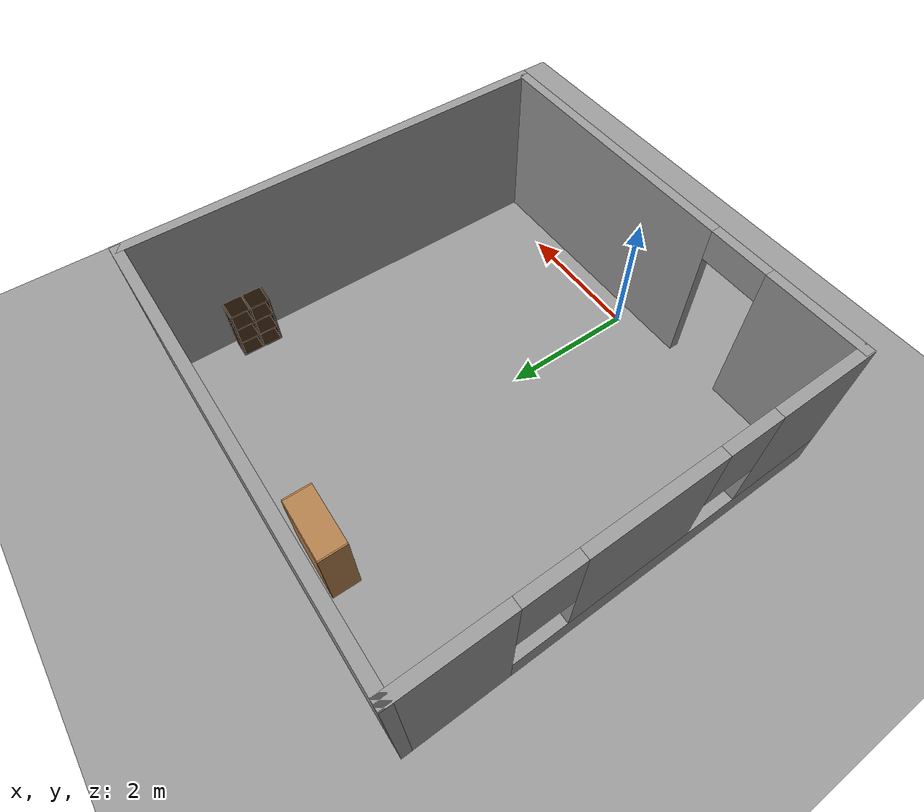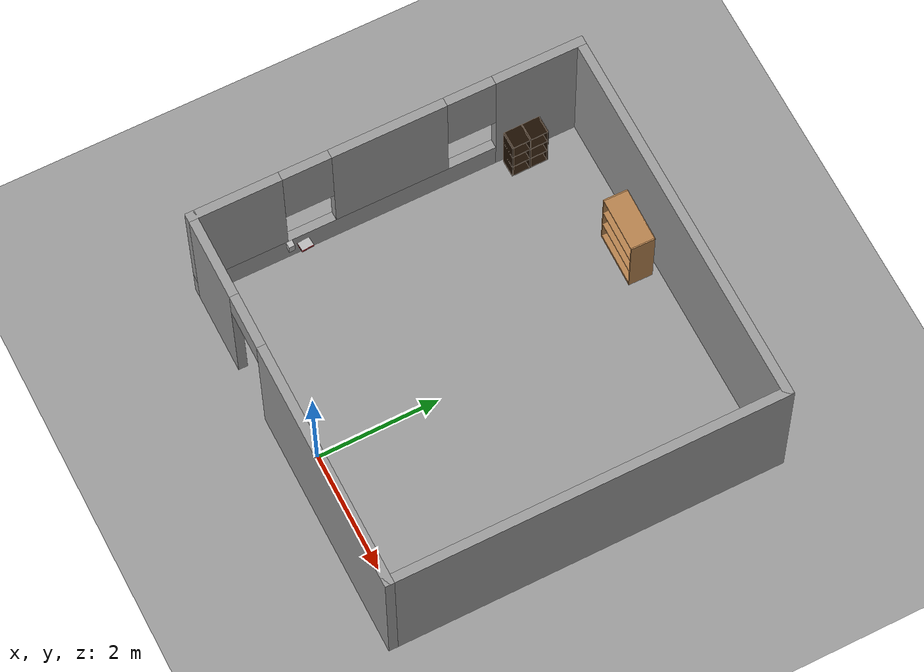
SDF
<sdf version="1.6">
 <world name="default">
  <light name="sun" type="directional">
   <pose>0 0 10 0 -0 0</pose>
   <diffuse>0.8 0.8 0.8 1</diffuse>
   <specular>0.2 0.2 0.2 1</specular>
   <attenuation>
    <range>1000</range>
    <constant>0.9</constant>
    <linear>0.01</linear>
    <quadratic>0.001</quadratic>
   </attenuation>
   <direction>0.5 0.1 -0.9</direction>
  </light>
  <scene><ambient>0.4 0.4 0.4 1</ambient><background>0.7 0.7 0.7 1</background><shadows>1</shadows></scene>
  <physics name="default_physics" default="0" type="ode">
   <max_step_size>0.01</max_step_size>
   <real_time_factor>1</real_time_factor>
   <real_time_update_rate>100</real_time_update_rate>
  </physics>
  <model name="bookshelf">
   <static>1</static>
   <link name="link">
    <inertial><mass>1</mass></inertial>
    <collision name="back">
     <pose>0 0.005 0.6 0 -0 0</pose>
     <geometry><box><size>0.9 0.01 1.2</size></box></geometry>
    </collision>
    <visual name="visual1">
     <pose>0 0.005 0.6 0 -0 0</pose>
     <geometry><box><size>0.9 0.01 1.2</size></box></geometry>
     <material>
      <script><uri>file://media/materials/scripts/gazebo.material</uri><name>Gazebo/Wood</name></script>
     </material>
    </visual>
    <collision name="left_side">
     <pose>0.45 -0.195 0.6 0 -0 0</pose>
     <geometry><box><size>0.02 0.4 1.2</size></box></geometry>
    </collision>
    <visual name="visual2">
     <pose>0.45 -0.195 0.6 0 -0 0</pose>
     <geometry><box><size>0.02 0.4 1.2</size></box></geometry>
     <material>
      <script><uri>file://media/materials/scripts/gazebo.material</uri><name>Gazebo/Wood</name></script>
     </material>
    </visual>
    <collision name="right_side">
     <pose>-0.45 -0.195 0.6 0 -0 0</pose>
     <geometry><box><size>0.02 0.4 1.2</size></box></geometry>
    </collision>
    <visual name="visual3">
     <pose>-0.45 -0.195 0.6 0 -0 0</pose>
     <geometry><box><size>0.02 0.4 1.2</size></box></geometry>
     <material>
      <script><uri>file://media/materials/scripts/gazebo.material</uri><name>Gazebo/Wood</name></script>
     </material>
    </visual>
    <collision name="bottom">
     <pose>0 -0.195 0.03 0 -0 0</pose>
     <geometry><box><size>0.88 0.4 0.06</size></box></geometry>
    </collision>
    <visual name="visual4">
     <pose>0 -0.195 0.03 0 -0 0</pose>
     <geometry><box><size>0.88 0.4 0.06</size></box></geometry>
     <material>
      <script><uri>file://media/materials/scripts/gazebo.material</uri><name>Gazebo/Wood</name></script>
     </material>
    </visual>
    <collision name="top">
     <pose>0 -0.195 1.19 0 -0 0</pose>
     <geometry><box><size>0.88 0.4 0.02</size></box></geometry>
    </collision>
    <visual name="visual5">
     <pose>0 -0.195 1.19 0 -0 0</pose>
     <geometry><box><size>0.88 0.4 0.02</size></box></geometry>
     <material>
      <script><uri>file://media/materials/scripts/gazebo.material</uri><name>Gazebo/Wood</name></script>
     </material>
    </visual>
    <collision name="low_shelf">
     <pose>0 -0.195 0.43 0 -0 0</pose>
     <geometry><box><size>0.88 0.4 0.02</size></box></geometry>
    </collision>
    <visual name="visual6">
     <pose>0 -0.195 0.43 0 -0 0</pose>
     <geometry><box><size>0.88 0.4 0.02</size></box></geometry>
     <material>
      <script><uri>file://media/materials/scripts/gazebo.material</uri><name>Gazebo/Wood</name></script>
     </material>
    </visual>
    <collision name="high_shelf">
     <pose>0 -0.195 0.8 0 -0 0</pose>
     <geometry><box><size>0.88 0.4 0.02</size></box></geometry>
    </collision>
    <visual name="visual7">
     <pose>0 -0.195 0.8 0 -0 0</pose>
     <geometry><box><size>0.88 0.4 0.02</size></box></geometry>
     <material>
      <script><uri>file://media/materials/scripts/gazebo.material</uri><name>Gazebo/Wood</name></script>
     </material>
    </visual>
    <velocity_decay><linear>0</linear><angular>0</angular></velocity_decay>
   </link>
   <pose>-0.847424 5.80682 0 0 0 -0.015977</pose>
  </model>
  <model name="ground_plane_0">
   <static>1</static>
   <link name="link">
    <collision name="collision">
     <geometry><plane><normal>0 0 1</normal><size>100 100</size></plane></geometry>
     <surface><friction><ode><mu>100</mu><mu2>50</mu2></ode></friction></surface>
    </collision>
    <visual name="visual">
     <cast_shadows>0</cast_shadows>
     <geometry><plane><normal>0 0 1</normal><size>100 100</size></plane></geometry>
     <material>
      <script><uri>file://media/materials/scripts/gazebo.material</uri><name>Gazebo/Grey</name></script>
     </material>
    </visual>
    <velocity_decay><linear>0</linear><angular>0</angular></velocity_decay>
   </link>
   <pose>0.497681 0 0 0 -0 0</pose>
  </model>
  <gravity>0 0 -9.8</gravity>
  <magnetic_field>6e-06 2.3e-05 -4.2e-05</magnetic_field>
  <atmosphere type="adiabatic"/>
  <spherical_coordinates>
   <surface_model>EARTH_WGS84</surface_model>
   <latitude_deg>0</latitude_deg>
   <longitude_deg>0</longitude_deg>
   <elevation>0</elevation>
   <heading_deg>0</heading_deg>
  </spherical_coordinates>
  <model name="6_Cube_StorageE">
   <link name="Wall_0">
    <pose>0 0 0.01 0 -0 0</pose>
    <inertial>
     <mass>1.6201</mass>
     <inertia><ixx>0.0119</ixx><iyy>0.0631</iyy><izz>0.0513</izz><ixy>0</ixy><ixz>0</ixz><iyz>0</iyz></inertia>
    </inertial>
    <collision name="Wall_0_Collision"><geometry><box><size>0.616 0.296 0.02</size></box></geometry></collision>
    <visual name="Wall_0_Visual">
     <geometry><box><size>0.616 0.296 0.02</size></box></geometry>
     <material>
      <script><uri>file://media/materials/scripts/gazebo.material</uri><name>Gazebo/Grey</name></script>
      <ambient>0.105882 0.0509804 0 1</ambient>
     </material>
    </visual>
   </link>
   <joint name="0_2" type="fixed">
    <pose>-0.308 0 0 0 -0 0</pose>
    <parent>Wall_2</parent>
    <child>Wall_0</child>
    <axis>
     <xyz>1 0 0</xyz>
     <use_parent_model_frame>0</use_parent_model_frame>
     <limit><lower>-1e+16</lower><upper>1e+16</upper></limit>
    </axis>
   </joint>
   <joint name="0_12" type="fixed">
    <parent>Wall_12</parent>
    <child>Wall_0</child>
    <axis>
     <xyz>0 0 1</xyz>
     <use_parent_model_frame>0</use_parent_model_frame>
     <limit><lower>-1e+16</lower><upper>1e+16</upper></limit>
    </axis>
   </joint>
   <joint name="0_4" type="fixed">
    <pose>0.308 0 0 0 -0 0</pose>
    <parent>Wall_4</parent>
    <child>Wall_0</child>
    <axis>
     <xyz>1 0 0</xyz>
     <use_parent_model_frame>0</use_parent_model_frame>
     <limit><lower>-1e+16</lower><upper>1e+16</upper></limit>
    </axis>
   </joint>
   <link name="Wall_10">
    <pose>0 0 0.61 0 -0 0</pose>
    <inertial>
     <mass>1.6201</mass>
     <inertia><ixx>0.0119</ixx><iyy>0.0631</iyy><izz>0.0513</izz><ixy>0</ixy><ixz>0</ixz><iyz>0</iyz></inertia>
    </inertial>
    <collision name="Wall_10_Collision"><geometry><box><size>0.616 0.296 0.02</size></box></geometry></collision>
    <visual name="Wall_10_Visual">
     <geometry><box><size>0.616 0.296 0.02</size></box></geometry>
     <material>
      <script><uri>file://media/materials/scripts/gazebo.material</uri><name>Gazebo/Grey</name></script>
      <ambient>0.105882 0.0509804 0 1</ambient>
     </material>
    </visual>
   </link>
   <joint name="10_2" type="fixed">
    <pose>-0.308 0 0 0 -0 0</pose>
    <parent>Wall_2</parent>
    <child>Wall_10</child>
    <axis>
     <xyz>1 0 0</xyz>
     <use_parent_model_frame>0</use_parent_model_frame>
     <limit><lower>-1e+16</lower><upper>1e+16</upper></limit>
    </axis>
   </joint>
   <joint name="10_12" type="fixed">
    <parent>Wall_12</parent>
    <child>Wall_10</child>
    <axis>
     <xyz>0 0 1</xyz>
     <use_parent_model_frame>0</use_parent_model_frame>
     <limit><lower>-1e+16</lower><upper>1e+16</upper></limit>
    </axis>
   </joint>
   <joint name="10_4" type="fixed">
    <pose>0.308 0 0 0 -0 0</pose>
    <parent>Wall_4</parent>
    <child>Wall_10</child>
    <axis>
     <xyz>1 0 0</xyz>
     <use_parent_model_frame>0</use_parent_model_frame>
     <limit><lower>-1e+16</lower><upper>1e+16</upper></limit>
    </axis>
   </joint>
   <link name="Wall_12">
    <pose>0 0 0.4575 0 -0 0</pose>
    <inertial>
     <mass>2.4065</mass>
     <inertia><ixx>0.0177</ixx><iyy>0.1855</iyy><izz>0.168</izz><ixy>0</ixy><ixz>0</ixz><iyz>0</iyz></inertia>
    </inertial>
    <collision name="Wall_12_Collision"><geometry><box><size>0.02 0.296 0.915</size></box></geometry></collision>
    <visual name="Wall_12_Visual">
     <geometry><box><size>0.02 0.296 0.915</size></box></geometry>
     <material>
      <script><uri>file://media/materials/scripts/gazebo.material</uri><name>Gazebo/Grey</name></script>
      <ambient>0.105882 0.0509804 0 1</ambient>
     </material>
    </visual>
   </link>
   <link name="Wall_2">
    <pose>-0.298 0 0.4575 0 -0 0</pose>
    <inertial>
     <mass>2.4065</mass>
     <inertia><ixx>0.0177</ixx><iyy>0.1855</iyy><izz>0.168</izz><ixy>0</ixy><ixz>0</ixz><iyz>0</iyz></inertia>
    </inertial>
    <collision name="Wall_2_Collision"><geometry><box><size>0.02 0.296 0.915</size></box></geometry></collision>
    <visual name="Wall_2_Visual">
     <geometry><box><size>0.02 0.296 0.915</size></box></geometry>
     <material>
      <script><uri>file://media/materials/scripts/gazebo.material</uri><name>Gazebo/Grey</name></script>
      <ambient>0.105882 0.0509804 0 1</ambient>
     </material>
    </visual>
   </link>
   <link name="Wall_4">
    <pose>0.298 0 0.4575 0 -0 0</pose>
    <inertial>
     <mass>2.4065</mass>
     <inertia><ixx>0.0177</ixx><iyy>0.1855</iyy><izz>0.168</izz><ixy>0</ixy><ixz>0</ixz><iyz>0</iyz></inertia>
    </inertial>
    <collision name="Wall_4_Collision"><geometry><box><size>0.02 0.296 0.915</size></box></geometry></collision>
    <visual name="Wall_4_Visual">
     <geometry><box><size>0.02 0.296 0.915</size></box></geometry>
     <material>
      <script><uri>file://media/materials/scripts/gazebo.material</uri><name>Gazebo/Grey</name></script>
      <ambient>0.105882 0.0509804 0 1</ambient>
     </material>
    </visual>
   </link>
   <link name="Wall_6">
    <pose>0 0 0.905 0 -0 0</pose>
    <inertial>
     <mass>1.6201</mass>
     <inertia><ixx>0.0119</ixx><iyy>0.0631</iyy><izz>0.0513</izz><ixy>0</ixy><ixz>0</ixz><iyz>0</iyz></inertia>
    </inertial>
    <collision name="Wall_6_Collision"><geometry><box><size>0.616 0.296 0.02</size></box></geometry></collision>
    <visual name="Wall_6_Visual">
     <geometry><box><size>0.616 0.296 0.02</size></box></geometry>
     <material>
      <script><uri>file://media/materials/scripts/gazebo.material</uri><name>Gazebo/Grey</name></script>
      <ambient>0.105882 0.0509804 0 1</ambient>
     </material>
    </visual>
   </link>
   <joint name="6_2" type="fixed">
    <pose>-0.308 0 0 0 -0 0</pose>
    <parent>Wall_2</parent>
    <child>Wall_6</child>
    <axis>
     <xyz>2 0 0</xyz>
     <use_parent_model_frame>0</use_parent_model_frame>
     <limit><lower>-1e+16</lower><upper>1e+16</upper></limit>
    </axis>
   </joint>
   <joint name="6_12" type="fixed">
    <parent>Wall_12</parent>
    <child>Wall_6</child>
    <axis>
     <xyz>0 0 1</xyz>
     <use_parent_model_frame>0</use_parent_model_frame>
     <limit><lower>-1e+16</lower><upper>1e+16</upper></limit>
    </axis>
   </joint>
   <joint name="6_4" type="fixed">
    <pose>0.308 0 0 0 -0 0</pose>
    <parent>Wall_4</parent>
    <child>Wall_6</child>
    <axis>
     <xyz>1 0 0</xyz>
     <use_parent_model_frame>0</use_parent_model_frame>
     <limit><lower>-1e+16</lower><upper>1e+16</upper></limit>
    </axis>
   </joint>
   <link name="Wall_8">
    <pose>0 0 0.305 0 -0 0</pose>
    <inertial>
     <mass>1.6201</mass>
     <inertia><ixx>0.0119</ixx><iyy>0.0631</iyy><izz>0.0513</izz><ixy>0</ixy><ixz>0</ixz><iyz>0</iyz></inertia>
    </inertial>
    <collision name="Wall_8_Collision"><geometry><box><size>0.616 0.296 0.02</size></box></geometry></collision>
    <visual name="Wall_8_Visual">
     <geometry><box><size>0.616 0.296 0.02</size></box></geometry>
     <material>
      <script><uri>file://media/materials/scripts/gazebo.material</uri><name>Gazebo/Grey</name></script>
      <ambient>0.105882 0.0509804 0 1</ambient>
     </material>
    </visual>
   </link>
   <joint name="8_2" type="fixed">
    <pose>-0.308 0 0 0 -0 0</pose>
    <parent>Wall_2</parent>
    <child>Wall_8</child>
    <axis>
     <xyz>1 0 0</xyz>
     <use_parent_model_frame>0</use_parent_model_frame>
     <limit><lower>-1e+16</lower><upper>1e+16</upper></limit>
    </axis>
   </joint>
   <joint name="8_12" type="fixed">
    <parent>Wall_12</parent>
    <child>Wall_8</child>
    <axis>
     <xyz>0 0 1</xyz>
     <use_parent_model_frame>0</use_parent_model_frame>
     <limit><lower>-1e+16</lower><upper>1e+16</upper></limit>
    </axis>
   </joint>
   <joint name="8_4" type="fixed">
    <pose>0.308 0 0 0 -0 0</pose>
    <parent>Wall_4</parent>
    <child>Wall_8</child>
    <axis>
     <xyz>1 0 0</xyz>
     <use_parent_model_frame>0</use_parent_model_frame>
     <limit><lower>-1e+16</lower><upper>1e+16</upper></limit>
    </axis>
   </joint>
   <static>1</static>
   <pose>-2.97933 4.99099 0 0 0 -1.55555</pose>
  </model>
  <model name="6_Cube_StorageE_1">
   <link name="Wall_0">
    <pose>0 0 0.01 0 -0 0</pose>
    <inertial>
     <mass>1.6201</mass>
     <inertia><ixx>0.0119</ixx><iyy>0.0631</iyy><izz>0.0513</izz><ixy>0</ixy><ixz>0</ixz><iyz>0</iyz></inertia>
    </inertial>
    <collision name="Wall_0_Collision"><geometry><box><size>0.616 0.296 0.02</size></box></geometry></collision>
    <visual name="Wall_0_Visual">
     <geometry><box><size>0.616 0.296 0.02</size></box></geometry>
     <material>
      <script><uri>file://media/materials/scripts/gazebo.material</uri><name>Gazebo/Grey</name></script>
      <ambient>0.105882 0.0509804 0 1</ambient>
     </material>
    </visual>
   </link>
   <joint name="0_2" type="fixed">
    <pose>-0.308 0 0 0 -0 0</pose>
    <parent>Wall_2</parent>
    <child>Wall_0</child>
    <axis>
     <xyz>1 0 0</xyz>
     <use_parent_model_frame>0</use_parent_model_frame>
     <limit><lower>-1e+16</lower><upper>1e+16</upper></limit>
    </axis>
   </joint>
   <joint name="0_12" type="fixed">
    <parent>Wall_12</parent>
    <child>Wall_0</child>
    <axis>
     <xyz>0 0 1</xyz>
     <use_parent_model_frame>0</use_parent_model_frame>
     <limit><lower>-1e+16</lower><upper>1e+16</upper></limit>
    </axis>
   </joint>
   <joint name="0_4" type="fixed">
    <pose>0.308 0 0 0 -0 0</pose>
    <parent>Wall_4</parent>
    <child>Wall_0</child>
    <axis>
     <xyz>1 0 0</xyz>
     <use_parent_model_frame>0</use_parent_model_frame>
     <limit><lower>-1e+16</lower><upper>1e+16</upper></limit>
    </axis>
   </joint>
   <link name="Wall_10">
    <pose>0 0 0.61 0 -0 0</pose>
    <inertial>
     <mass>1.6201</mass>
     <inertia><ixx>0.0119</ixx><iyy>0.0631</iyy><izz>0.0513</izz><ixy>0</ixy><ixz>0</ixz><iyz>0</iyz></inertia>
    </inertial>
    <collision name="Wall_10_Collision"><geometry><box><size>0.616 0.296 0.02</size></box></geometry></collision>
    <visual name="Wall_10_Visual">
     <geometry><box><size>0.616 0.296 0.02</size></box></geometry>
     <material>
      <script><uri>file://media/materials/scripts/gazebo.material</uri><name>Gazebo/Grey</name></script>
      <ambient>0.105882 0.0509804 0 1</ambient>
     </material>
    </visual>
   </link>
   <joint name="10_2" type="fixed">
    <pose>-0.308 0 0 0 -0 0</pose>
    <parent>Wall_2</parent>
    <child>Wall_10</child>
    <axis>
     <xyz>1 0 0</xyz>
     <use_parent_model_frame>0</use_parent_model_frame>
     <limit><lower>-1e+16</lower><upper>1e+16</upper></limit>
    </axis>
   </joint>
   <joint name="10_12" type="fixed">
    <parent>Wall_12</parent>
    <child>Wall_10</child>
    <axis>
     <xyz>0 0 1</xyz>
     <use_parent_model_frame>0</use_parent_model_frame>
     <limit><lower>-1e+16</lower><upper>1e+16</upper></limit>
    </axis>
   </joint>
   <joint name="10_4" type="fixed">
    <pose>0.308 0 0 0 -0 0</pose>
    <parent>Wall_4</parent>
    <child>Wall_10</child>
    <axis>
     <xyz>1 0 0</xyz>
     <use_parent_model_frame>0</use_parent_model_frame>
     <limit><lower>-1e+16</lower><upper>1e+16</upper></limit>
    </axis>
   </joint>
   <link name="Wall_12">
    <pose>0 0 0.4575 0 -0 0</pose>
    <inertial>
     <mass>2.4065</mass>
     <inertia><ixx>0.0177</ixx><iyy>0.1855</iyy><izz>0.168</izz><ixy>0</ixy><ixz>0</ixz><iyz>0</iyz></inertia>
    </inertial>
    <collision name="Wall_12_Collision"><geometry><box><size>0.02 0.296 0.915</size></box></geometry></collision>
    <visual name="Wall_12_Visual">
     <geometry><box><size>0.02 0.296 0.915</size></box></geometry>
     <material>
      <script><uri>file://media/materials/scripts/gazebo.material</uri><name>Gazebo/Grey</name></script>
      <ambient>0.105882 0.0509804 0 1</ambient>
     </material>
    </visual>
   </link>
   <link name="Wall_2">
    <pose>-0.298 0 0.4575 0 -0 0</pose>
    <inertial>
     <mass>2.4065</mass>
     <inertia><ixx>0.0177</ixx><iyy>0.1855</iyy><izz>0.168</izz><ixy>0</ixy><ixz>0</ixz><iyz>0</iyz></inertia>
    </inertial>
    <collision name="Wall_2_Collision"><geometry><box><size>0.02 0.296 0.915</size></box></geometry></collision>
    <visual name="Wall_2_Visual">
     <geometry><box><size>0.02 0.296 0.915</size></box></geometry>
     <material>
      <script><uri>file://media/materials/scripts/gazebo.material</uri><name>Gazebo/Grey</name></script>
      <ambient>0.105882 0.0509804 0 1</ambient>
     </material>
    </visual>
   </link>
   <link name="Wall_4">
    <pose>0.298 0 0.4575 0 -0 0</pose>
    <inertial>
     <mass>2.4065</mass>
     <inertia><ixx>0.0177</ixx><iyy>0.1855</iyy><izz>0.168</izz><ixy>0</ixy><ixz>0</ixz><iyz>0</iyz></inertia>
    </inertial>
    <collision name="Wall_4_Collision"><geometry><box><size>0.02 0.296 0.915</size></box></geometry></collision>
    <visual name="Wall_4_Visual">
     <geometry><box><size>0.02 0.296 0.915</size></box></geometry>
     <material>
      <script><uri>file://media/materials/scripts/gazebo.material</uri><name>Gazebo/Grey</name></script>
      <ambient>0.105882 0.0509804 0 1</ambient>
     </material>
    </visual>
   </link>
   <link name="Wall_6">
    <pose>0 0 0.905 0 -0 0</pose>
    <inertial>
     <mass>1.6201</mass>
     <inertia><ixx>0.0119</ixx><iyy>0.0631</iyy><izz>0.0513</izz><ixy>0</ixy><ixz>0</ixz><iyz>0</iyz></inertia>
    </inertial>
    <collision name="Wall_6_Collision"><geometry><box><size>0.616 0.296 0.02</size></box></geometry></collision>
    <visual name="Wall_6_Visual">
     <geometry><box><size>0.616 0.296 0.02</size></box></geometry>
     <material>
      <script><uri>file://media/materials/scripts/gazebo.material</uri><name>Gazebo/Grey</name></script>
      <ambient>0.105882 0.0509804 0 1</ambient>
     </material>
    </visual>
   </link>
   <joint name="6_2" type="fixed">
    <pose>-0.308 0 0 0 -0 0</pose>
    <parent>Wall_2</parent>
    <child>Wall_6</child>
    <axis>
     <xyz>2 0 0</xyz>
     <use_parent_model_frame>0</use_parent_model_frame>
     <limit><lower>-1e+16</lower><upper>1e+16</upper></limit>
    </axis>
   </joint>
   <joint name="6_12" type="fixed">
    <parent>Wall_12</parent>
    <child>Wall_6</child>
    <axis>
     <xyz>0 0 1</xyz>
     <use_parent_model_frame>0</use_parent_model_frame>
     <limit><lower>-1e+16</lower><upper>1e+16</upper></limit>
    </axis>
   </joint>
   <joint name="6_4" type="fixed">
    <pose>0.308 0 0 0 -0 0</pose>
    <parent>Wall_4</parent>
    <child>Wall_6</child>
    <axis>
     <xyz>1 0 0</xyz>
     <use_parent_model_frame>0</use_parent_model_frame>
     <limit><lower>-1e+16</lower><upper>1e+16</upper></limit>
    </axis>
   </joint>
   <link name="Wall_8">
    <pose>0 0 0.305 0 -0 0</pose>
    <inertial>
     <mass>1.6201</mass>
     <inertia><ixx>0.0119</ixx><iyy>0.0631</iyy><izz>0.0513</izz><ixy>0</ixy><ixz>0</ixz><iyz>0</iyz></inertia>
    </inertial>
    <collision name="Wall_8_Collision"><geometry><box><size>0.616 0.296 0.02</size></box></geometry></collision>
    <visual name="Wall_8_Visual">
     <geometry><box><size>0.616 0.296 0.02</size></box></geometry>
     <material>
      <script><uri>file://media/materials/scripts/gazebo.material</uri><name>Gazebo/Grey</name></script>
      <ambient>0.105882 0.0509804 0 1</ambient>
     </material>
    </visual>
   </link>
   <joint name="8_2" type="fixed">
    <pose>-0.308 0 0 0 -0 0</pose>
    <parent>Wall_2</parent>
    <child>Wall_8</child>
    <axis>
     <xyz>1 0 0</xyz>
     <use_parent_model_frame>0</use_parent_model_frame>
     <limit><lower>-1e+16</lower><upper>1e+16</upper></limit>
    </axis>
   </joint>
   <joint name="8_12" type="fixed">
    <parent>Wall_12</parent>
    <child>Wall_8</child>
    <axis>
     <xyz>0 0 1</xyz>
     <use_parent_model_frame>0</use_parent_model_frame>
     <limit><lower>-1e+16</lower><upper>1e+16</upper></limit>
    </axis>
   </joint>
   <joint name="8_4" type="fixed">
    <pose>0.308 0 0 0 -0 0</pose>
    <parent>Wall_4</parent>
    <child>Wall_8</child>
    <axis>
     <xyz>1 0 0</xyz>
     <use_parent_model_frame>0</use_parent_model_frame>
     <limit><lower>-1e+16</lower><upper>1e+16</upper></limit>
    </axis>
   </joint>
   <static>1</static>
   <pose>2.86255 4.79767 0 0 0 -1.58814</pose>
  </model>
  <model name="Untitled_1">
   <pose>-0.043818 2.82328 0 0 -0 0</pose>
   <link name="Wall_16">
    <collision name="Wall_16_Collision">
     <geometry><box><size>6.5 0.15 2.5</size></box></geometry>
     <pose>0 0 1.25 0 -0 0</pose>
    </collision>
    <visual name="Wall_16_Visual">
     <pose>0 0 1.25 0 -0 0</pose>
     <geometry><box><size>6.5 0.15 2.5</size></box></geometry>
     <material>
      <script><uri>file://media/materials/scripts/gazebo.material</uri><name>Gazebo/Grey</name></script>
      <ambient>1 1 1 1</ambient>
     </material>
    </visual>
    <pose>-0.007561 3.175 0 0 -0 0</pose>
   </link>
   <link name="Wall_18">
    <collision name="Wall_18_Collision">
     <geometry><box><size>6.5 0.15 2.5</size></box></geometry>
     <pose>0 0 1.25 0 -0 0</pose>
    </collision>
    <visual name="Wall_18_Visual">
     <pose>0 0 1.25 0 -0 0</pose>
     <geometry><box><size>6.5 0.15 2.5</size></box></geometry>
     <material>
      <script><uri>file://media/materials/scripts/gazebo.material</uri><name>Gazebo/Grey</name></script>
      <ambient>1 1 1 1</ambient>
     </material>
    </visual>
    <pose>3.18256 0 0 0 0 -1.5708</pose>
   </link>
   <link name="Wall_20">
    <pose>0.007561 -3.175 0 0 -0 3.14159</pose>
    <visual name="Wall_20_Visual_0">
     <pose>-1.19256 0 1.25 0 -0 0</pose>
     <geometry><box><size>4.11489 0.15 2.5</size></box></geometry>
     <material>
      <script><uri>file://media/materials/scripts/gazebo.material</uri><name>Gazebo/Grey</name></script>
      <ambient>1 1 1 1</ambient>
     </material>
    </visual>
    <collision name="Wall_20_Collision_0">
     <geometry><box><size>4.11489 0.15 2.5</size></box></geometry>
     <pose>-1.19256 0 1.25 0 -0 0</pose>
    </collision>
    <visual name="Wall_20_Visual_1">
     <pose>2.50744 0 1.25 0 -0 0</pose>
     <geometry><box><size>1.48511 0.15 2.5</size></box></geometry>
     <material>
      <script><uri>file://media/materials/scripts/gazebo.material</uri><name>Gazebo/Grey</name></script>
      <ambient>1 1 1 1</ambient>
     </material>
    </visual>
    <collision name="Wall_20_Collision_1">
     <geometry><box><size>1.48511 0.15 2.5</size></box></geometry>
     <pose>2.50744 0 1.25 0 -0 0</pose>
    </collision>
    <visual name="Wall_20_Visual_2">
     <pose>1.31489 0 2.25 0 -0 0</pose>
     <geometry><box><size>0.9 0.15 0.5</size></box></geometry>
     <material>
      <script><uri>file://media/materials/scripts/gazebo.material</uri><name>Gazebo/Grey</name></script>
      <ambient>1 1 1 1</ambient>
     </material>
    </visual>
    <collision name="Wall_20_Collision_2">
     <geometry><box><size>0.9 0.15 0.5</size></box></geometry>
     <pose>1.31489 0 2.25 0 -0 0</pose>
    </collision>
   </link>
   <link name="Wall_22">
    <pose>-3.18256 0 0 0 0 -1.5708</pose>
    <visual name="Wall_22_Visual_0">
     <pose>-2.49757 0 1.25 0 -0 0</pose>
     <geometry><box><size>1.50487 0.15 2.5</size></box></geometry>
     <material>
      <script><uri>file://media/materials/scripts/gazebo.material</uri><name>Gazebo/Grey</name></script>
      <ambient>1 1 1 1</ambient>
     </material>
    </visual>
    <collision name="Wall_22_Collision_0">
     <geometry><box><size>1.50487 0.15 2.5</size></box></geometry>
     <pose>-2.49757 0 1.25 0 -0 0</pose>
    </collision>
    <visual name="Wall_22_Visual_1">
     <pose>0.752434 0 0.25 0 -0 0</pose>
     <geometry><box><size>4.99513 0.15 0.5</size></box></geometry>
     <material>
      <script><uri>file://media/materials/scripts/gazebo.material</uri><name>Gazebo/Grey</name></script>
      <ambient>1 1 1 1</ambient>
     </material>
    </visual>
    <collision name="Wall_22_Collision_1">
     <geometry><box><size>4.99513 0.15 0.5</size></box></geometry>
     <pose>0.752434 0 0.25 0 -0 0</pose>
    </collision>
    <visual name="Wall_22_Visual_2">
     <pose>0.000803 0 1.5 0 -0 0</pose>
     <geometry><box><size>1.89187 0.15 2</size></box></geometry>
     <material>
      <script><uri>file://media/materials/scripts/gazebo.material</uri><name>Gazebo/Grey</name></script>
      <ambient>1 1 1 1</ambient>
     </material>
    </visual>
    <collision name="Wall_22_Collision_2">
     <geometry><box><size>1.89187 0.15 2</size></box></geometry>
     <pose>0.000803 0 1.5 0 -0 0</pose>
    </collision>
    <visual name="Wall_22_Visual_3">
     <pose>2.49837 0 1.5 0 -0 0</pose>
     <geometry><box><size>1.50326 0.15 2</size></box></geometry>
     <material>
      <script><uri>file://media/materials/scripts/gazebo.material</uri><name>Gazebo/Grey</name></script>
      <ambient>1 1 1 1</ambient>
     </material>
    </visual>
    <collision name="Wall_22_Collision_3">
     <geometry><box><size>1.50326 0.15 2</size></box></geometry>
     <pose>2.49837 0 1.5 0 -0 0</pose>
    </collision>
    <visual name="Wall_22_Visual_4">
     <pose>-1.34513 0 1.9 0 -0 0</pose>
     <geometry><box><size>0.8 0.15 1.2</size></box></geometry>
     <material>
      <script><uri>file://media/materials/scripts/gazebo.material</uri><name>Gazebo/Grey</name></script>
      <ambient>1 1 1 1</ambient>
     </material>
    </visual>
    <collision name="Wall_22_Collision_4">
     <geometry><box><size>0.8 0.15 1.2</size></box></geometry>
     <pose>-1.34513 0 1.9 0 -0 0</pose>
    </collision>
    <visual name="Wall_22_Visual_5">
     <pose>1.34674 0 1.9 0 -0 0</pose>
     <geometry><box><size>0.8 0.15 1.2</size></box></geometry>
     <material>
      <script><uri>file://media/materials/scripts/gazebo.material</uri><name>Gazebo/Grey</name></script>
      <ambient>1 1 1 1</ambient>
     </material>
    </visual>
    <collision name="Wall_22_Collision_5">
     <geometry><box><size>0.8 0.15 1.2</size></box></geometry>
     <pose>1.34674 0 1.9 0 -0 0</pose>
    </collision>
   </link>
   <static>1</static>
  </model>
  <model name="tea_box">
   <link name="link">
    <pose>0 0 0.075 0 -0 0</pose>
    <visual name="visual">
     <geometry><box><size>0.1 0.1 0.15</size></box></geometry>
     <material>
      <script>
       <uri>model://tea_box/materials/scripts</uri>
       <uri>model://tea_box/materials/textures</uri>
       <name>tea_pat</name>
      </script>
     </material>
    </visual>
    <collision name="collision"><geometry><box><size>0.1 0.1 0.15</size></box></geometry></collision>
   </link>
   <static>1</static>
   <pose>-2.93054 1.02228 0.711482 0 -0 0</pose>
  </model>
  <model name="biscuit_box">
   <link name="link">
    <pose>0 0 0.025 0 -0 0</pose>
    <visual name="visual">
     <geometry><box><size>0.2 0.15 0.05</size></box></geometry>
     <material>
      <ambient>0.423 0.019 0.035 1</ambient>
      <diffuse>0.423 0.019 0.035 1</diffuse>
      <specular>0.01 0.01 0.01 1</specular>
      <emissive>0 0 0 1</emissive>
     </material>
    </visual>
    <collision name="collision"><geometry><box><size>0.1 0.1 0.15</size></box></geometry></collision>
   </link>
   <link name="link_1">
    <pose>0 0 0.05 0 -0 0</pose>
    <visual name="visual">
     <geometry><box><size>0.2 0.15 0.001</size></box></geometry>
     <material>
      <script>
       <uri>model://biscuit_box/materials/scripts</uri>
       <uri>model://biscuit_box/materials/textures</uri>
       <name>biscuit_pat</name>
      </script>
     </material>
    </visual>
    <collision name="collision"><geometry><box><size>0.1 0.1 0.15</size></box></geometry></collision>
   </link>
   <static>1</static>
   <pose>-2.87677 1.24242 0.711531 0 -0 1.64889</pose>
  </model>
 </world>
</sdf>
